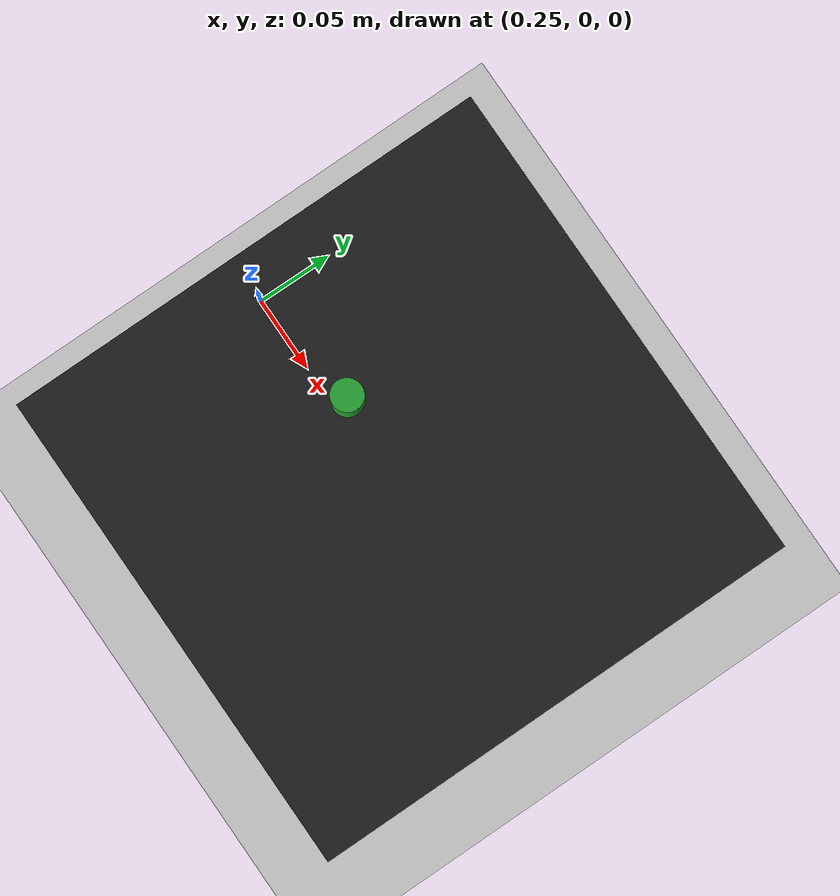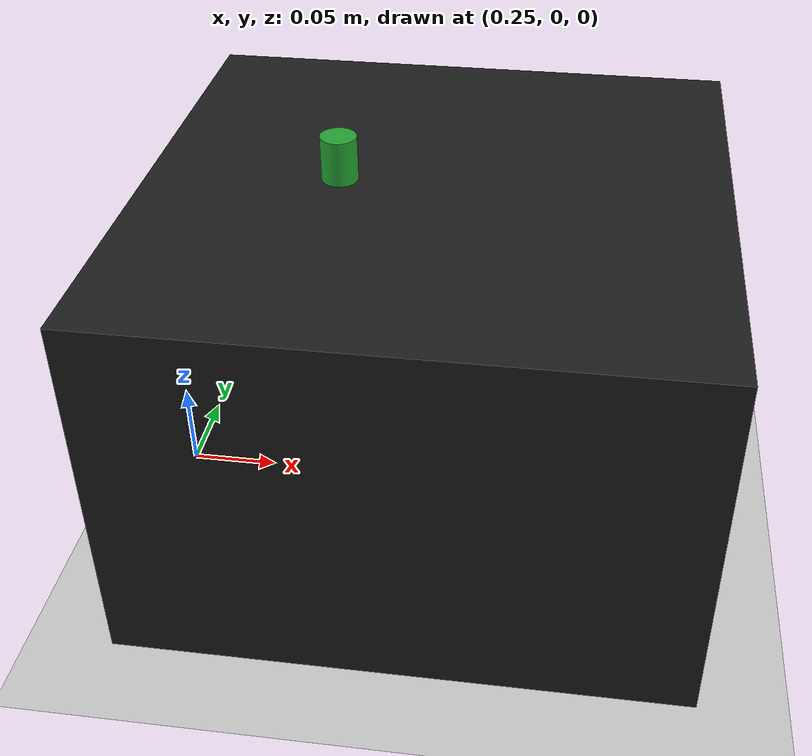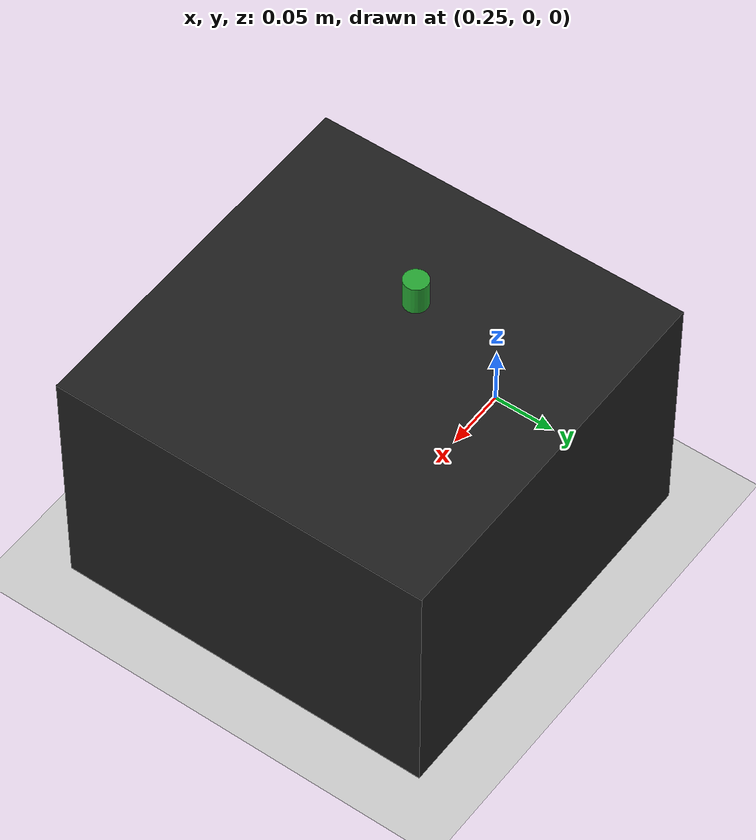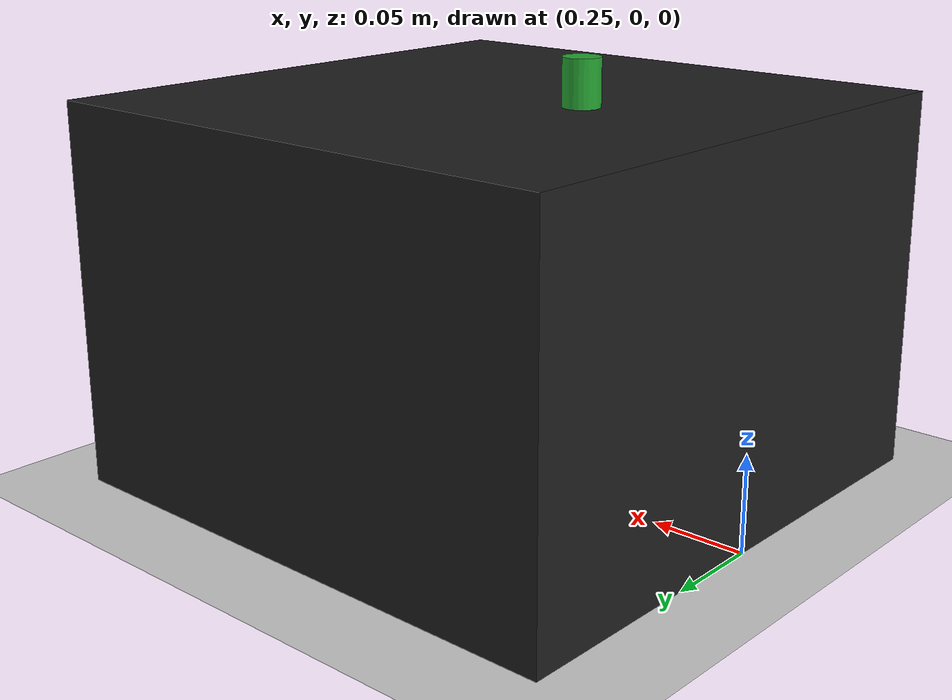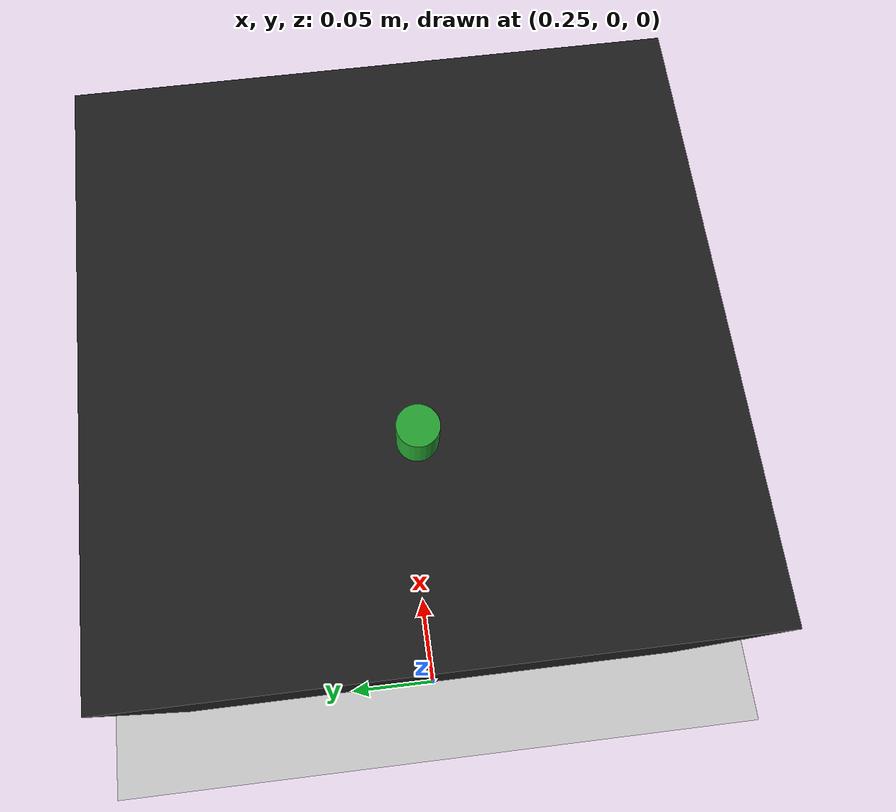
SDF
<?xml version='1.0' ?>

<sdf version='1.4'>
	<world name='empty'>

		<!-- A global light source -->
		<include>
			<uri>model://sun</uri>
		</include>

		<!-- A ground plane -->
		<include>
			<uri>model://ground_plane</uri>
		</include>

		<!-- Physics settings for simulation -->
		<physics type='ode'>
			<max_step_size>0.001</max_step_size>
			<real_time_factor>1</real_time_factor>
			<real_time_update_rate>1000</real_time_update_rate>
			<gravity>0 0 -9.81</gravity>
		</physics>

<model name="beer">
    <link name="link">
      <pose>0.35 0 0.212 0 0 0</pose>
      <inertial>
        <mass>0.001</mass>
        <inertia>
          <ixx>0.00058</ixx>
          <ixy>0</ixy>
          <ixz>0</ixz>
          <iyy>0.00058</iyy>
          <iyz>0</iyz>
          <izz>0.00019</izz>
        </inertia>
      </inertial>
      <collision name="collision">
        <geometry>
          <cylinder>
            <radius>0.01500</radius>
            <length>0.044000</length>
          </cylinder>
        </geometry>
      </collision>
      <visual name="visual">
        <geometry>
          <cylinder>
            <radius>0.009500</radius>
            <length>0.024000</length>
          </cylinder>
        </geometry>
        <material>
          <script>
            <name>Gazebo/Green</name>
			<uri>file://media/materials/scripts/gazebo.material</uri>
          </script>
        </material>
      </visual>
    </link>
  </model>

		<model name='table_box_model'>
			<static>true</static>
			<pose frame=''>0.40 0.0 0.1 0 -0 1.5707963265</pose>

			<link name='table_box_link'>
				<inertial>
					<mass>1</mass>
					<inertia>
						<ixx>0.166667</ixx>
						<ixy>0</ixy>
						<ixz>0</ixz>
						<iyy>0.166667</iyy>
						<iyz>0</iyz>
						<izz>0.166667</izz>
					</inertia>
				</inertial>

				<collision name='collision'>
					<geometry>
						<box>
							<size>0.30 0.30 0.2</size>
						</box>
					</geometry>
					<max_contacts>10</max_contacts>
					<surface>
						<contact>
							<ode/>
						</contact>
						<bounce/>
						<friction>
							<ode>
								<mu>0.6</mu>
								<mu2>0.6</mu2>
							</ode>
							<torsional>
								<ode/>
							</torsional>
						</friction>
					</surface>
				</collision>

				<visual name='visual'>
					<geometry>
						<box>
							<size>0.30 0.30 0.2</size>
						</box>
					</geometry>
					<material>
						<script>
							<name>Gazebo/Black</name>
							<uri>file://media/materials/scripts/gazebo.material</uri>
						</script>
					</material>
				</visual>

				<self_collide>0</self_collide>
				<kinematic>0</kinematic>
			</link>
		</model>

	</world>
</sdf>
